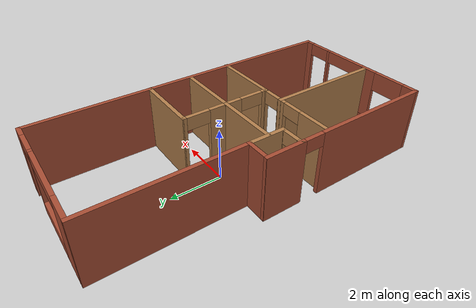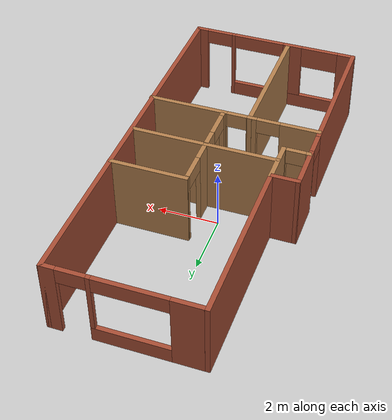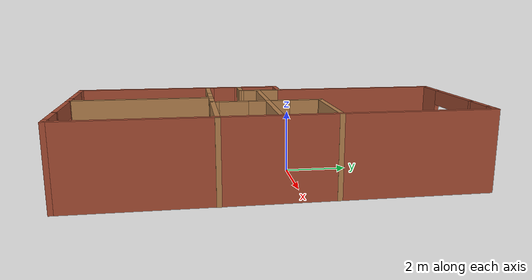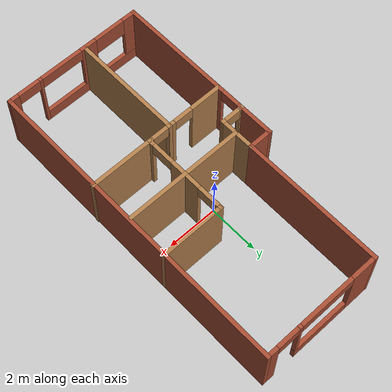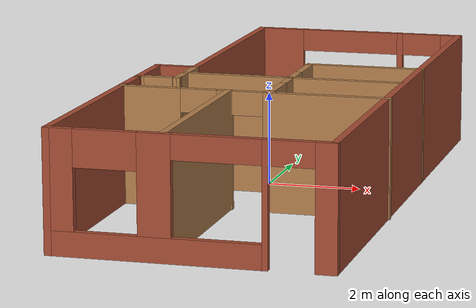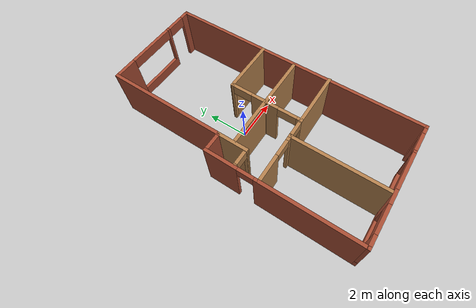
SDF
<?xml version='1.0'?>
<sdf version='1.6'>
  <model name='apartment'>
    <pose frame=''>0.314458 -0.672925 0 0 -0 0</pose>
    <link name='Wall_0'>
      <pose frame=''>0.485298 6.175 0 0 -0 0</pose>
      <visual name='Wall_0_Visual_0'>
        <pose frame=''>-1.89642 0 1.25 0 -0 0</pose>
        <geometry>
          <box>
            <size>0.957161 0.15 2.5</size>
          </box>
        </geometry>
        <material>
          <script>
            <uri>file://media/materials/scripts/gazebo.material</uri>
            <name>Gazebo/Bricks</name>
          </script>
          <ambient>0.996078 0.47451 0.0196078 1</ambient>
        </material>
        <meta>
          <layer>0</layer>
        </meta>
      </visual>
      <collision name='Wall_0_Collision_0'>
        <geometry>
          <box>
            <size>0.957161 0.15 2.5</size>
          </box>
        </geometry>
        <pose frame=''>-1.89642 0 1.25 0 -0 0</pose>
      </collision>
      <visual name='Wall_0_Visual_1'>
        <pose frame=''>2.12746 0 1.25 0 -0 0</pose>
        <geometry>
          <box>
            <size>0.495082 0.15 2.5</size>
          </box>
        </geometry>
        <material>
          <script>
            <uri>file://media/materials/scripts/gazebo.material</uri>
            <name>Gazebo/Bricks</name>
          </script>
          <ambient>0.996078 0.47451 0.0196078 1</ambient>
        </material>
        <meta>
          <layer>0</layer>
        </meta>
      </visual>
      <collision name='Wall_0_Collision_1'>
        <geometry>
          <box>
            <size>0.495082 0.15 2.5</size>
          </box>
        </geometry>
        <pose frame=''>2.12746 0 1.25 0 -0 0</pose>
      </collision>
      <visual name='Wall_0_Visual_2'>
        <pose frame=''>-0.21896 0 0.25 0 -0 0</pose>
        <geometry>
          <box>
            <size>2.39776 0.15 0.5</size>
          </box>
        </geometry>
        <material>
          <script>
            <uri>file://media/materials/scripts/gazebo.material</uri>
            <name>Gazebo/Bricks</name>
          </script>
          <ambient>0.996078 0.47451 0.0196078 1</ambient>
        </material>
        <meta>
          <layer>0</layer>
        </meta>
      </visual>
      <collision name='Wall_0_Collision_2'>
        <geometry>
          <box>
            <size>2.39776 0.15 0.5</size>
          </box>
        </geometry>
        <pose frame=''>-0.21896 0 0.25 0 -0 0</pose>
      </collision>
      <visual name='Wall_0_Visual_3'>
        <pose frame=''>0.91204 0 1.5 0 -0 0</pose>
        <geometry>
          <box>
            <size>0.135757 0.15 2</size>
          </box>
        </geometry>
        <material>
          <script>
            <uri>file://media/materials/scripts/gazebo.material</uri>
            <name>Gazebo/Bricks</name>
          </script>
          <ambient>0.996078 0.47451 0.0196078 1</ambient>
        </material>
        <meta>
          <layer>0</layer>
        </meta>
      </visual>
      <collision name='Wall_0_Collision_3'>
        <geometry>
          <box>
            <size>0.135757 0.15 2</size>
          </box>
        </geometry>
        <pose frame=''>0.91204 0 1.5 0 -0 0</pose>
      </collision>
      <visual name='Wall_0_Visual_4'>
        <pose frame=''>-0.286839 0 2.25 0 -0 0</pose>
        <geometry>
          <box>
            <size>2.262 0.15 0.5</size>
          </box>
        </geometry>
        <material>
          <script>
            <uri>file://media/materials/scripts/gazebo.material</uri>
            <name>Gazebo/Bricks</name>
          </script>
          <ambient>0.996078 0.47451 0.0196078 1</ambient>
        </material>
        <meta>
          <layer>0</layer>
        </meta>
      </visual>
      <collision name='Wall_0_Collision_4'>
        <geometry>
          <box>
            <size>2.262 0.15 0.5</size>
          </box>
        </geometry>
        <pose frame=''>-0.286839 0 2.25 0 -0 0</pose>
      </collision>
      <visual name='Wall_0_Visual_5'>
        <pose frame=''>1.42992 0 2.25 0 -0 0</pose>
        <geometry>
          <box>
            <size>0.9 0.15 0.5</size>
          </box>
        </geometry>
        <material>
          <script>
            <uri>file://media/materials/scripts/gazebo.material</uri>
            <name>Gazebo/Bricks</name>
          </script>
          <ambient>0.996078 0.47451 0.0196078 1</ambient>
        </material>
        <meta>
          <layer>0</layer>
        </meta>
      </visual>
      <collision name='Wall_0_Collision_5'>
        <geometry>
          <box>
            <size>0.9 0.15 0.5</size>
          </box>
        </geometry>
        <pose frame=''>1.42992 0 2.25 0 -0 0</pose>
      </collision>
    </link>
    <link name='Wall_1'>
      <collision name='Wall_1_Collision'>
        <geometry>
          <box>
            <size>12.5 0.15 2.5</size>
          </box>
        </geometry>
        <pose frame=''>0 0 1.25 0 -0 0</pose>
      </collision>
      <visual name='Wall_1_Visual'>
        <pose frame=''>0 0 1.25 0 -0 0</pose>
        <geometry>
          <box>
            <size>12.5 0.15 2.5</size>
          </box>
        </geometry>
        <material>
          <script>
            <uri>file://media/materials/scripts/gazebo.material</uri>
            <name>Gazebo/Bricks</name>
          </script>
          <ambient>0.996078 0.47451 0.0196078 1</ambient>
        </material>
        <meta>
          <layer>0</layer>
        </meta>
      </visual>
      <pose frame=''>2.7853 0 0 0 0 -1.5708</pose>
    </link>
    <link name='Wall_11'>
      <pose frame=''>-2.3889 -0.646623 0 0 -0 0</pose>
      <visual name='Wall_11_Visual_0'>
        <pose frame=''>-0.39543 0 1.25 0 -0 0</pose>
        <geometry>
          <box>
            <size>0.20914 0.15 2.5</size>
          </box>
        </geometry>
        <material>
          <script>
            <uri>file://media/materials/scripts/gazebo.material</uri>
            <name>Gazebo/Wood</name>
          </script>
          <ambient>1 1 1 1</ambient>
        </material>
        <meta>
          <layer>0</layer>
        </meta>
      </visual>
      <collision name='Wall_11_Collision_0'>
        <geometry>
          <box>
            <size>0.20914 0.15 2.5</size>
          </box>
        </geometry>
        <pose frame=''>-0.39543 0 1.25 0 -0 0</pose>
      </collision>
      <visual name='Wall_11_Visual_1'>
        <pose frame=''>0.416914 0 1.25 0 -0 0</pose>
        <geometry>
          <box>
            <size>0.166172 0.15 2.5</size>
          </box>
        </geometry>
        <material>
          <script>
            <uri>file://media/materials/scripts/gazebo.material</uri>
            <name>Gazebo/Wood</name>
          </script>
          <ambient>1 1 1 1</ambient>
        </material>
        <meta>
          <layer>0</layer>
        </meta>
      </visual>
      <collision name='Wall_11_Collision_1'>
        <geometry>
          <box>
            <size>0.166172 0.15 2.5</size>
          </box>
        </geometry>
        <pose frame=''>0.416914 0 1.25 0 -0 0</pose>
      </collision>
      <visual name='Wall_11_Visual_2'>
        <pose frame=''>0.021484 0 2.25 0 -0 0</pose>
        <geometry>
          <box>
            <size>0.624688 0.15 0.5</size>
          </box>
        </geometry>
        <material>
          <script>
            <uri>file://media/materials/scripts/gazebo.material</uri>
            <name>Gazebo/Wood</name>
          </script>
          <ambient>1 1 1 1</ambient>
        </material>
        <meta>
          <layer>0</layer>
        </meta>
      </visual>
      <collision name='Wall_11_Collision_2'>
        <geometry>
          <box>
            <size>0.624688 0.15 0.5</size>
          </box>
        </geometry>
        <pose frame=''>0.021484 0 2.25 0 -0 0</pose>
      </collision>
    </link>
    <link name='Wall_12'>
      <collision name='Wall_12_Collision'>
        <geometry>
          <box>
            <size>1.47155 0.15 2.5</size>
          </box>
        </geometry>
        <pose frame=''>0 0 1.25 0 -0 0</pose>
      </collision>
      <visual name='Wall_12_Visual'>
        <pose frame=''>0 0 1.25 0 -0 0</pose>
        <geometry>
          <box>
            <size>1.47155 0.15 2.5</size>
          </box>
        </geometry>
        <material>
          <script>
            <uri>file://media/materials/scripts/gazebo.material</uri>
            <name>Gazebo/Wood</name>
          </script>
          <ambient>1 1 1 1</ambient>
        </material>
        <meta>
          <layer>0</layer>
        </meta>
      </visual>
      <pose frame=''>-1.96418 0.014151 0 0 -0 1.57122</pose>
    </link>
    <link name='Wall_14'>
      <collision name='Wall_14_Collision'>
        <geometry>
          <box>
            <size>2.425 0.15 2.5</size>
          </box>
        </geometry>
        <pose frame=''>0 0 1.25 0 -0 0</pose>
      </collision>
      <visual name='Wall_14_Visual'>
        <pose frame=''>0 0 1.25 0 -0 0</pose>
        <geometry>
          <box>
            <size>2.425 0.15 2.5</size>
          </box>
        </geometry>
        <material>
          <script>
            <uri>file://media/materials/scripts/gazebo.material</uri>
            <name>Gazebo/Wood</name>
          </script>
          <ambient>1 1 1 1</ambient>
        </material>
        <meta>
          <layer>0</layer>
        </meta>
      </visual>
      <pose frame=''>-0.796958 -0.049075 0 0 -0 0</pose>
    </link>
    <link name='Wall_17'>
      <collision name='Wall_17_Collision'>
        <geometry>
          <box>
            <size>2.584 0.15 2.5</size>
          </box>
        </geometry>
        <pose frame=''>0 0 1.25 0 -0 0</pose>
      </collision>
      <visual name='Wall_17_Visual'>
        <pose frame=''>0 0 1.25 0 -0 0</pose>
        <geometry>
          <box>
            <size>2.584 0.15 2.5</size>
          </box>
        </geometry>
        <material>
          <script>
            <uri>file://media/materials/scripts/gazebo.material</uri>
            <name>Gazebo/Wood</name>
          </script>
          <ambient>1 1 1 1</ambient>
        </material>
        <meta>
          <layer>0</layer>
        </meta>
      </visual>
      <pose frame=''>1.57254 1.62593 0 0 -0 3.14159</pose>
    </link>
    <link name='Wall_19'>
      <pose frame=''>0.350205 -0.090732 0 0 -0 1.5708</pose>
      <visual name='Wall_19_Visual_0'>
        <pose frame=''>-1.61376 0 1.25 0 -0 0</pose>
        <geometry>
          <box>
            <size>0.272483 0.15 2.5</size>
          </box>
        </geometry>
        <material>
          <script>
            <uri>file://media/materials/scripts/gazebo.material</uri>
            <name>Gazebo/Wood</name>
          </script>
          <ambient>1 1 1 1</ambient>
        </material>
        <meta>
          <layer>0</layer>
        </meta>
      </visual>
      <collision name='Wall_19_Collision_0'>
        <geometry>
          <box>
            <size>0.272483 0.15 2.5</size>
          </box>
        </geometry>
        <pose frame=''>-1.61376 0 1.25 0 -0 0</pose>
      </collision>
      <visual name='Wall_19_Visual_1'>
        <pose frame=''>0.073731 0 1.25 0 -0 0</pose>
        <geometry>
          <box>
            <size>1.3025 0.15 2.5</size>
          </box>
        </geometry>
        <material>
          <script>
            <uri>file://media/materials/scripts/gazebo.material</uri>
            <name>Gazebo/Wood</name>
          </script>
          <ambient>1 1 1 1</ambient>
        </material>
        <meta>
          <layer>0</layer>
        </meta>
      </visual>
      <collision name='Wall_19_Collision_1'>
        <geometry>
          <box>
            <size>1.3025 0.15 2.5</size>
          </box>
        </geometry>
        <pose frame=''>0.073731 0 1.25 0 -0 0</pose>
      </collision>
      <visual name='Wall_19_Visual_2'>
        <pose frame=''>1.68749 0 1.25 0 -0 0</pose>
        <geometry>
          <box>
            <size>0.12502 0.15 2.5</size>
          </box>
        </geometry>
        <material>
          <script>
            <uri>file://media/materials/scripts/gazebo.material</uri>
            <name>Gazebo/Wood</name>
          </script>
          <ambient>1 1 1 1</ambient>
        </material>
        <meta>
          <layer>0</layer>
        </meta>
      </visual>
      <collision name='Wall_19_Collision_2'>
        <geometry>
          <box>
            <size>0.12502 0.15 2.5</size>
          </box>
        </geometry>
        <pose frame=''>1.68749 0 1.25 0 -0 0</pose>
      </collision>
      <visual name='Wall_19_Visual_3'>
        <pose frame=''>-1.02752 0 2.25 0 -0 0</pose>
        <geometry>
          <box>
            <size>0.9 0.15 0.5</size>
          </box>
        </geometry>
        <material>
          <script>
            <uri>file://media/materials/scripts/gazebo.material</uri>
            <name>Gazebo/Wood</name>
          </script>
          <ambient>1 1 1 1</ambient>
        </material>
        <meta>
          <layer>0</layer>
        </meta>
      </visual>
      <collision name='Wall_19_Collision_3'>
        <geometry>
          <box>
            <size>0.9 0.15 0.5</size>
          </box>
        </geometry>
        <pose frame=''>-1.02752 0 2.25 0 -0 0</pose>
      </collision>
      <visual name='Wall_19_Visual_4'>
        <pose frame=''>1.17498 0 2.25 0 -0 0</pose>
        <geometry>
          <box>
            <size>0.9 0.15 0.5</size>
          </box>
        </geometry>
        <material>
          <script>
            <uri>file://media/materials/scripts/gazebo.material</uri>
            <name>Gazebo/Wood</name>
          </script>
          <ambient>1 1 1 1</ambient>
        </material>
        <meta>
          <layer>0</layer>
        </meta>
      </visual>
      <collision name='Wall_19_Collision_4'>
        <geometry>
          <box>
            <size>0.9 0.15 0.5</size>
          </box>
        </geometry>
        <pose frame=''>1.17498 0 2.25 0 -0 0</pose>
      </collision>
    </link>
    <link name='Wall_2'>
      <pose frame=''>-0.014702 -6.175 0 0 -0 3.14159</pose>
      <visual name='Wall_2_Visual_0'>
        <pose frame=''>-2.65805 0 1.25 0 -0 0</pose>
        <geometry>
          <box>
            <size>0.433901 0.15 2.5</size>
          </box>
        </geometry>
        <material>
          <script>
            <uri>file://media/materials/scripts/gazebo.material</uri>
            <name>Gazebo/Bricks</name>
          </script>
          <ambient>0.996078 0.47451 0.0196078 1</ambient>
        </material>
        <meta>
          <layer>0</layer>
        </meta>
      </visual>
      <collision name='Wall_2_Collision_0'>
        <geometry>
          <box>
            <size>0.433901 0.15 2.5</size>
          </box>
        </geometry>
        <pose frame=''>-2.65805 0 1.25 0 -0 0</pose>
      </collision>
      <visual name='Wall_2_Visual_1'>
        <pose frame=''>-1.48313 0 1.25 0 -0 0</pose>
        <geometry>
          <box>
            <size>0.115933 0.15 2.5</size>
          </box>
        </geometry>
        <material>
          <script>
            <uri>file://media/materials/scripts/gazebo.material</uri>
            <name>Gazebo/Bricks</name>
          </script>
          <ambient>0.996078 0.47451 0.0196078 1</ambient>
        </material>
        <meta>
          <layer>0</layer>
        </meta>
      </visual>
      <collision name='Wall_2_Collision_1'>
        <geometry>
          <box>
            <size>0.115933 0.15 2.5</size>
          </box>
        </geometry>
        <pose frame=''>-1.48313 0 1.25 0 -0 0</pose>
      </collision>
      <visual name='Wall_2_Visual_2'>
        <pose frame=''>0.724917 0 0.25 0 -0 0</pose>
        <geometry>
          <box>
            <size>4.30017 0.15 0.5</size>
          </box>
        </geometry>
        <material>
          <script>
            <uri>file://media/materials/scripts/gazebo.material</uri>
            <name>Gazebo/Bricks</name>
          </script>
          <ambient>0.996078 0.47451 0.0196078 1</ambient>
        </material>
        <meta>
          <layer>0</layer>
        </meta>
      </visual>
      <collision name='Wall_2_Collision_2'>
        <geometry>
          <box>
            <size>4.30017 0.15 0.5</size>
          </box>
        </geometry>
        <pose frame=''>0.724917 0 0.25 0 -0 0</pose>
      </collision>
      <visual name='Wall_2_Visual_3'>
        <pose frame=''>0.668464 0 1.5 0 -0 0</pose>
        <geometry>
          <box>
            <size>0.66726 0.15 2</size>
          </box>
        </geometry>
        <material>
          <script>
            <uri>file://media/materials/scripts/gazebo.material</uri>
            <name>Gazebo/Bricks</name>
          </script>
          <ambient>0.996078 0.47451 0.0196078 1</ambient>
        </material>
        <meta>
          <layer>0</layer>
        </meta>
      </visual>
      <collision name='Wall_2_Collision_3'>
        <geometry>
          <box>
            <size>0.66726 0.15 2</size>
          </box>
        </geometry>
        <pose frame=''>0.668464 0 1.5 0 -0 0</pose>
      </collision>
      <visual name='Wall_2_Visual_4'>
        <pose frame=''>2.57155 0 1.5 0 -0 0</pose>
        <geometry>
          <box>
            <size>0.606906 0.15 2</size>
          </box>
        </geometry>
        <material>
          <script>
            <uri>file://media/materials/scripts/gazebo.material</uri>
            <name>Gazebo/Bricks</name>
          </script>
          <ambient>0.996078 0.47451 0.0196078 1</ambient>
        </material>
        <meta>
          <layer>0</layer>
        </meta>
      </visual>
      <collision name='Wall_2_Collision_4'>
        <geometry>
          <box>
            <size>0.606906 0.15 2</size>
          </box>
        </geometry>
        <pose frame=''>2.57155 0 1.5 0 -0 0</pose>
      </collision>
      <visual name='Wall_2_Visual_5'>
        <pose frame=''>1.63509 0 2.125 0 -0 0</pose>
        <geometry>
          <box>
            <size>1.266 0.15 0.75</size>
          </box>
        </geometry>
        <material>
          <script>
            <uri>file://media/materials/scripts/gazebo.material</uri>
            <name>Gazebo/Bricks</name>
          </script>
          <ambient>0.996078 0.47451 0.0196078 1</ambient>
        </material>
        <meta>
          <layer>0</layer>
        </meta>
      </visual>
      <collision name='Wall_2_Collision_5'>
        <geometry>
          <box>
            <size>1.266 0.15 0.75</size>
          </box>
        </geometry>
        <pose frame=''>1.63509 0 2.125 0 -0 0</pose>
      </collision>
      <visual name='Wall_2_Visual_6'>
        <pose frame=''>-1.9911 0 2.25 0 -0 0</pose>
        <geometry>
          <box>
            <size>0.9 0.15 0.5</size>
          </box>
        </geometry>
        <material>
          <script>
            <uri>file://media/materials/scripts/gazebo.material</uri>
            <name>Gazebo/Bricks</name>
          </script>
          <ambient>0.996078 0.47451 0.0196078 1</ambient>
        </material>
        <meta>
          <layer>0</layer>
        </meta>
      </visual>
      <collision name='Wall_2_Collision_6'>
        <geometry>
          <box>
            <size>0.9 0.15 0.5</size>
          </box>
        </geometry>
        <pose frame=''>-1.9911 0 2.25 0 -0 0</pose>
      </collision>
      <visual name='Wall_2_Visual_7'>
        <pose frame=''>-0.545166 0 2.25 0 -0 0</pose>
        <geometry>
          <box>
            <size>1.76 0.15 0.5</size>
          </box>
        </geometry>
        <material>
          <script>
            <uri>file://media/materials/scripts/gazebo.material</uri>
            <name>Gazebo/Bricks</name>
          </script>
          <ambient>0.996078 0.47451 0.0196078 1</ambient>
        </material>
        <meta>
          <layer>0</layer>
        </meta>
      </visual>
      <collision name='Wall_2_Collision_7'>
        <geometry>
          <box>
            <size>1.76 0.15 0.5</size>
          </box>
        </geometry>
        <pose frame=''>-0.545166 0 2.25 0 -0 0</pose>
      </collision>
    </link>
    <link name='Wall_21'>
      <collision name='Wall_21_Collision'>
        <geometry>
          <box>
            <size>2.5 0.15 2.5</size>
          </box>
        </geometry>
        <pose frame=''>0 0 1.25 0 -0 0</pose>
      </collision>
      <visual name='Wall_21_Visual'>
        <pose frame=''>0 0 1.25 0 -0 0</pose>
        <geometry>
          <box>
            <size>2.5 0.15 2.5</size>
          </box>
        </geometry>
        <material>
          <script>
            <uri>file://media/materials/scripts/gazebo.material</uri>
            <name>Gazebo/Wood</name>
          </script>
          <ambient>1 1 1 1</ambient>
        </material>
        <meta>
          <layer>0</layer>
        </meta>
      </visual>
      <pose frame=''>1.51554 -0.049075 0 0 -0 0</pose>
    </link>
    <link name='Wall_3'>
      <pose frame=''>-2.8147 -2.75 0 0 -0 1.5708</pose>
      <visual name='Wall_3_Visual_0'>
        <pose frame=''>-1.15148 0 1.25 0 -0 0</pose>
        <geometry>
          <box>
            <size>4.69705 0.15 2.5</size>
          </box>
        </geometry>
        <material>
          <script>
            <uri>file://media/materials/scripts/gazebo.material</uri>
            <name>Gazebo/Bricks</name>
          </script>
          <ambient>0.996078 0.47451 0.0196078 1</ambient>
        </material>
        <meta>
          <layer>0</layer>
        </meta>
      </visual>
      <collision name='Wall_3_Collision_0'>
        <geometry>
          <box>
            <size>4.69705 0.15 2.5</size>
          </box>
        </geometry>
        <pose frame=''>-1.15148 0 1.25 0 -0 0</pose>
      </collision>
      <visual name='Wall_3_Visual_1'>
        <pose frame=''>2.72205 0 1.25 0 -0 0</pose>
        <geometry>
          <box>
            <size>1.55591 0.15 2.5</size>
          </box>
        </geometry>
        <material>
          <script>
            <uri>file://media/materials/scripts/gazebo.material</uri>
            <name>Gazebo/Bricks</name>
          </script>
          <ambient>0.996078 0.47451 0.0196078 1</ambient>
        </material>
        <meta>
          <layer>0</layer>
        </meta>
      </visual>
      <collision name='Wall_3_Collision_1'>
        <geometry>
          <box>
            <size>1.55591 0.15 2.5</size>
          </box>
        </geometry>
        <pose frame=''>2.72205 0 1.25 0 -0 0</pose>
      </collision>
      <visual name='Wall_3_Visual_2'>
        <pose frame=''>1.57057 0 2.25 0 -0 0</pose>
        <geometry>
          <box>
            <size>0.747049 0.15 0.5</size>
          </box>
        </geometry>
        <material>
          <script>
            <uri>file://media/materials/scripts/gazebo.material</uri>
            <name>Gazebo/Bricks</name>
          </script>
          <ambient>0.996078 0.47451 0.0196078 1</ambient>
        </material>
        <meta>
          <layer>0</layer>
        </meta>
      </visual>
      <collision name='Wall_3_Collision_2'>
        <geometry>
          <box>
            <size>0.747049 0.15 0.5</size>
          </box>
        </geometry>
        <pose frame=''>1.57057 0 2.25 0 -0 0</pose>
      </collision>
    </link>
    <link name='Wall_4'>
      <collision name='Wall_4_Collision'>
        <geometry>
          <box>
            <size>1 0.15 2.5</size>
          </box>
        </geometry>
        <pose frame=''>0 0 1.25 0 -0 0</pose>
      </collision>
      <visual name='Wall_4_Visual'>
        <pose frame=''>0 0 1.25 0 -0 0</pose>
        <geometry>
          <box>
            <size>1 0.15 2.5</size>
          </box>
        </geometry>
        <material>
          <script>
            <uri>file://media/materials/scripts/gazebo.material</uri>
            <name>Gazebo/Bricks</name>
          </script>
          <ambient>0.996078 0.47451 0.0196078 1</ambient>
        </material>
        <meta>
          <layer>0</layer>
        </meta>
      </visual>
      <pose frame=''>-2.38958 0.674962 0 0 0 -8.9e-05</pose>
    </link>
    <link name='Wall_5'>
      <collision name='Wall_5_Collision'>
        <geometry>
          <box>
            <size>5.648 0.15 2.5</size>
          </box>
        </geometry>
        <pose frame=''>0 0 1.25 0 -0 0</pose>
      </collision>
      <visual name='Wall_5_Visual'>
        <pose frame=''>0 0 1.25 0 -0 0</pose>
        <geometry>
          <box>
            <size>5.648 0.15 2.5</size>
          </box>
        </geometry>
        <material>
          <script>
            <uri>file://media/materials/scripts/gazebo.material</uri>
            <name>Gazebo/Bricks</name>
          </script>
          <ambient>0.996078 0.47451 0.0196078 1</ambient>
        </material>
        <meta>
          <layer>0</layer>
        </meta>
      </visual>
      <pose frame=''>-1.96446 3.42392 0 0 -0 1.5708</pose>
    </link>
    <link name='Wall_7'>
      <pose frame=''>0.014703 -1.77234 0 0 -0 3.14159</pose>
      <visual name='Wall_7_Visual_0'>
        <pose frame=''>-1.5455 0 1.25 0 -0 0</pose>
        <geometry>
          <box>
            <size>2.65901 0.15 2.5</size>
          </box>
        </geometry>
        <material>
          <script>
            <uri>file://media/materials/scripts/gazebo.material</uri>
            <name>Gazebo/Wood</name>
          </script>
          <ambient>1 1 1 1</ambient>
        </material>
        <meta>
          <layer>0</layer>
        </meta>
      </visual>
      <collision name='Wall_7_Collision_0'>
        <geometry>
          <box>
            <size>2.65901 0.15 2.5</size>
          </box>
        </geometry>
        <pose frame=''>-1.5455 0 1.25 0 -0 0</pose>
      </collision>
      <visual name='Wall_7_Visual_1'>
        <pose frame=''>0.60939 0 1.25 0 -0 0</pose>
        <geometry>
          <box>
            <size>0.328058 0.15 2.5</size>
          </box>
        </geometry>
        <material>
          <script>
            <uri>file://media/materials/scripts/gazebo.material</uri>
            <name>Gazebo/Wood</name>
          </script>
          <ambient>1 1 1 1</ambient>
        </material>
        <meta>
          <layer>0</layer>
        </meta>
      </visual>
      <collision name='Wall_7_Collision_1'>
        <geometry>
          <box>
            <size>0.328058 0.15 2.5</size>
          </box>
        </geometry>
        <pose frame=''>0.60939 0 1.25 0 -0 0</pose>
      </collision>
      <visual name='Wall_7_Visual_2'>
        <pose frame=''>2.20709 0 1.25 0 -0 0</pose>
        <geometry>
          <box>
            <size>1.33582 0.15 2.5</size>
          </box>
        </geometry>
        <material>
          <script>
            <uri>file://media/materials/scripts/gazebo.material</uri>
            <name>Gazebo/Wood</name>
          </script>
          <ambient>1 1 1 1</ambient>
        </material>
        <meta>
          <layer>0</layer>
        </meta>
      </visual>
      <collision name='Wall_7_Collision_2'>
        <geometry>
          <box>
            <size>1.33582 0.15 2.5</size>
          </box>
        </geometry>
        <pose frame=''>2.20709 0 1.25 0 -0 0</pose>
      </collision>
      <visual name='Wall_7_Visual_3'>
        <pose frame=''>0.114683 0 2.25 0 -0 0</pose>
        <geometry>
          <box>
            <size>0.661355 0.15 0.5</size>
          </box>
        </geometry>
        <material>
          <script>
            <uri>file://media/materials/scripts/gazebo.material</uri>
            <name>Gazebo/Wood</name>
          </script>
          <ambient>1 1 1 1</ambient>
        </material>
        <meta>
          <layer>0</layer>
        </meta>
      </visual>
      <collision name='Wall_7_Collision_3'>
        <geometry>
          <box>
            <size>0.661355 0.15 0.5</size>
          </box>
        </geometry>
        <pose frame=''>0.114683 0 2.25 0 -0 0</pose>
      </collision>
      <visual name='Wall_7_Visual_4'>
        <pose frame=''>1.1563 0 2.25 0 -0 0</pose>
        <geometry>
          <box>
            <size>0.765762 0.15 0.5</size>
          </box>
        </geometry>
        <material>
          <script>
            <uri>file://media/materials/scripts/gazebo.material</uri>
            <name>Gazebo/Wood</name>
          </script>
          <ambient>1 1 1 1</ambient>
        </material>
        <meta>
          <layer>0</layer>
        </meta>
      </visual>
      <collision name='Wall_7_Collision_4'>
        <geometry>
          <box>
            <size>0.765762 0.15 0.5</size>
          </box>
        </geometry>
        <pose frame=''>1.1563 0 2.25 0 -0 0</pose>
      </collision>
    </link>
    <link name='Wall_9'>
      <collision name='Wall_9_Collision'>
        <geometry>
          <box>
            <size>4.481 0.15 2.5</size>
          </box>
        </geometry>
        <pose frame=''>0 0 1.25 0 -0 0</pose>
      </collision>
      <visual name='Wall_9_Visual'>
        <pose frame=''>0 0 1.25 0 -0 0</pose>
        <geometry>
          <box>
            <size>4.481 0.15 2.5</size>
          </box>
        </geometry>
        <material>
          <script>
            <uri>file://media/materials/scripts/gazebo.material</uri>
            <name>Gazebo/Wood</name>
          </script>
          <ambient>1 1 1 1</ambient>
        </material>
        <meta>
          <layer>0</layer>
        </meta>
      </visual>
      <pose frame=''>-0.527458 -3.93358 0 0 -0 1.5708</pose>
    </link>
    <static>1</static>
  </model>
</sdf>
